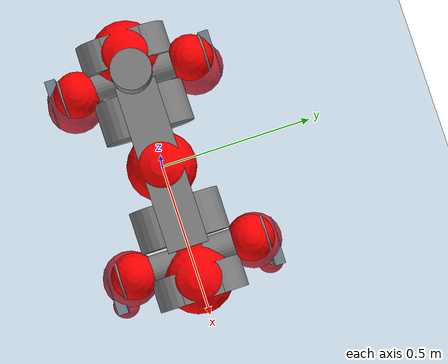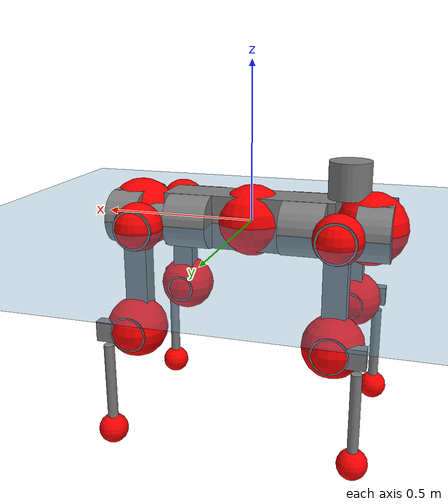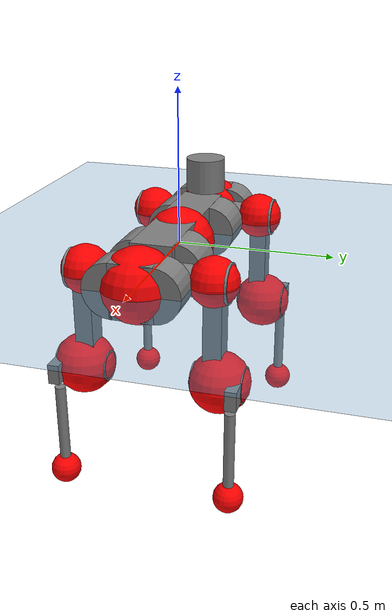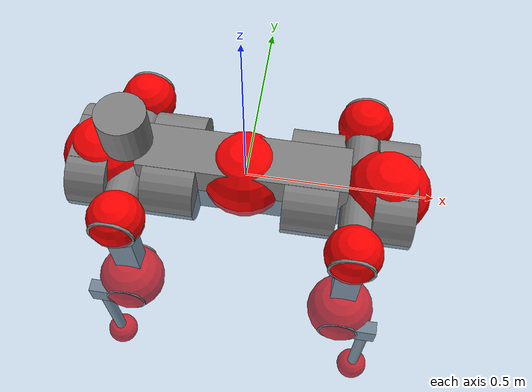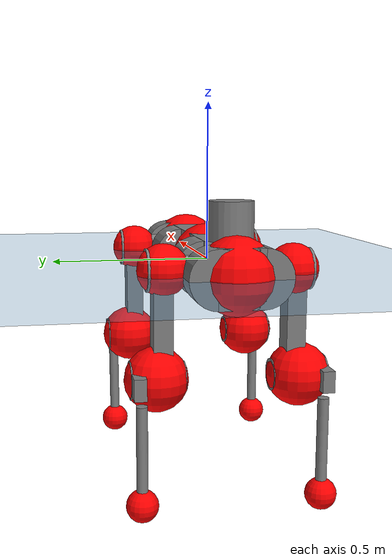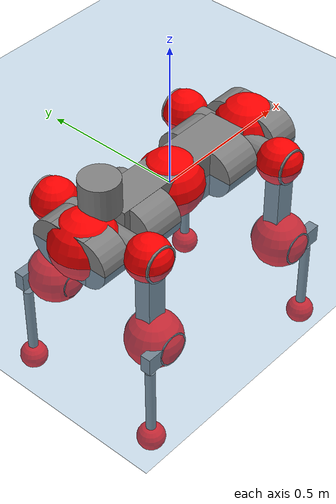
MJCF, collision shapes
<mujoco model="anymal_c">
  <compiler angle="radian" assetdir="assets" balanceinertia="true" inertiafromgeom="false"/>

  <option timestep="0.005" density="1.2" viscosity="2e-05"/>

  <size nkey="1"/>

  <visual>
    <quality shadowsize="8192"/>
    <map shadowclip="0.5"/>
  </visual>

  <default>
    <default class="/">
      <material specular="0" shininess="0.25"/>
      <geom contype="0" conaffinity="0" group="1" solref="-1000 -80"/>
      <site size="0.01 0.005 0.005" group="5"/>
      <general forcelimited="true" forcerange="-80 80" biastype="affine" gainprm="80" biasprm="0 -80 -2"/>
      <default class="anymal_c">
        <joint armature="0.01" damping="0.01" frictionloss="0.1"/>
        <default class="visual">
          <geom type="mesh" group="2"/>
          <default class="visual_zflip"/>
        </default>
        <default class="collision">
          <geom type="cylinder" group="3"/>
          <default class="foot">
            <geom size="0.03 0 0" type="sphere" condim="6" priority="1" friction="0.8 0.02 0.01" solimp="0.015 1 0.03"/>
          </default>
        </default>
      </default>
      <default class="reward_collision_sphere">
        <geom group="5" rgba="1 0 0 1"/>
      </default>
    </default>
  </default>

  <asset>
    <texture type="skybox" colorspace="auto" name="//unnamed_texture_0" builtin="gradient" rgb1="0.95 0.95 0.95" rgb2="0.95 0.95 0.95" width="100" height="600"/>
    <texture type="2d" colorspace="auto" name="texplane" builtin="checker" rgb1="0.345 0.575 0.748" rgb2="0.345 0.575 0.748" markrgb="1 1 1" width="512" height="512"/>
    <texture type="2d" colorspace="linear" name="base" file="base.png"/>
    <texture type="2d" colorspace="linear" name="top_shell" file="top_shell.png"/>
    <texture type="2d" colorspace="linear" name="bottom_shell" file="bottom_shell.png"/>
    <texture type="2d" colorspace="linear" name="remote" file="remote.png"/>
    <texture type="2d" colorspace="linear" name="hatch" file="hatch.png"/>
    <texture type="2d" colorspace="linear" name="handle" file="handle.png"/>
    <texture type="2d" colorspace="linear" name="face" file="face.png"/>
    <texture type="2d" colorspace="linear" name="battery" file="battery.png"/>
    <texture type="2d" colorspace="linear" name="lidar_cage" file="lidar_cage.png"/>
    <texture type="2d" colorspace="linear" name="depth_camera" file="depth_camera.png"/>
    <texture type="2d" colorspace="linear" name="wide_angle_camera" file="wide_angle_camera.png"/>
    <texture type="2d" colorspace="linear" name="lidar" file="lidar.png"/>
    <texture type="2d" colorspace="linear" name="drive" file="drive.png"/>
    <texture type="2d" colorspace="linear" name="hip_l" file="hip_l.png"/>
    <texture type="2d" colorspace="linear" name="shank_l" file="shank_l.png"/>
    <texture type="2d" colorspace="linear" name="foot" file="foot.png"/>
    <texture type="2d" colorspace="linear" name="thigh" file="thigh.png"/>
    <texture type="2d" colorspace="linear" name="shank_r" file="shank_r.png"/>
    <texture type="2d" colorspace="linear" name="hip_r" file="hip_r.png"/>
    <material name="MatPlane" class="/" texture="texplane" texuniform="true" texrepeat="2 2" specular="0.9" shininess="0.5"/>
    <material name="black_plastic" class="/" rgba="0.007 0.007 0.007 1"/>
    <material name="green" class="/" rgba="0.052 0.178 0.033 1"/>
    <material name="red" class="/" rgba="0.178 0.006 0.005 1"/>
    <material name="yellow" class="/" rgba="0.178 0.119 0.006 1"/>
    <material name="lwl" class="/" rgba="0.8 0.8 0.8 1"/>
    <material name="base" class="/" texture="base"/>
    <material name="top_shell" class="/" texture="top_shell"/>
    <material name="bottom_shell" class="/" texture="bottom_shell"/>
    <material name="hip_l" class="/" texture="hip_l"/>
    <material name="thigh" class="/" texture="thigh"/>
    <material name="shank_l" class="/" texture="shank_l"/>
    <material name="foot" class="/" texture="foot"/>
    <material name="hip_r" class="/" texture="hip_r"/>
    <material name="shank" class="/" texture="shank_r"/>
    <material name="hatch" class="/" texture="hatch"/>
    <material name="remote" class="/" texture="remote"/>
    <material name="handle" class="/" texture="handle"/>
    <material name="face" class="/" texture="face"/>
    <material name="depth_camera" class="/" texture="depth_camera"/>
    <material name="wide_angle_camera" class="/" texture="wide_angle_camera"/>
    <material name="battery" class="/" texture="battery"/>
    <material name="lidar_cage" class="/" texture="lidar_cage"/>
    <material name="lidar" class="/" texture="lidar"/>
    <material name="drive" class="/" texture="drive"/>
    <mesh name="base_0" class="/" file="base_0.obj"/>
    <mesh name="base_1" class="/" file="base_1.obj"/>
    <mesh name="base_2" class="/" file="base_2.obj"/>
    <mesh name="base_3" class="/" file="base_3.obj"/>
    <mesh name="base_4" class="/" file="base_4.obj"/>
    <mesh name="base_5" class="/" file="base_5.obj"/>
    <mesh name="top_shell" class="/" file="top_shell.obj"/>
    <mesh name="bottom_shell" class="/" file="bottom_shell.obj"/>
    <mesh name="remote" class="/" file="remote.obj"/>
    <mesh name="handle" class="/" file="handle.obj"/>
    <mesh name="face" class="/" file="face.obj"/>
    <mesh name="wide_angle_camera" class="/" file="wide_angle_camera.obj"/>
    <mesh name="depth_camera" class="/" file="depth_camera.obj"/>
    <mesh name="battery" class="/" file="battery.obj"/>
    <mesh name="lidar_cage" class="/" file="lidar_cage.obj"/>
    <mesh name="lidar" class="/" file="lidar.obj"/>
    <mesh name="drive" class="/" file="drive.obj"/>
    <mesh name="hip_l" class="/" file="hip_l.obj"/>
    <mesh name="thigh" class="/" file="thigh.obj"/>
    <mesh name="shank_l" class="/" file="shank_l.obj"/>
    <mesh name="foot" class="/" file="foot.obj"/>
    <mesh name="hip_r" class="/" file="hip_r.obj"/>
    <mesh name="hatch" class="/" file="hatch.obj"/>
    <mesh name="shank_r" class="/" file="shank_r.obj"/>
  </asset>

  <worldbody>
    <geom name="floor" class="/" size="100 100 0.125" type="plane" group="0" material="MatPlane"/>
    <light name="toplight_shadow" class="/" pos="0 0 5" dir="0.0990148 0.0990148 -0.990148" type="directional" ambient="0.04 0.04 0.04" diffuse="0.55 0.55 0.55" specular="0.12 0.12 0.12"/>
    <light name="toplight_fill" class="/" pos="0 0 5" dir="0.0990148 0.0990148 -0.990148" type="directional" castshadow="false" ambient="0.04 0.04 0.04" diffuse="0.3 0.3 0.3" specular="0.08 0.08 0.08"/>
    <body name="trunk" childclass="anymal_c" pos="-0.00205356 -0.000751295 0.00139227" quat="1 -0.000256916 -3.53161e-05 7.07984e-05">
      <inertial pos="0.00919564 0.00416509 0.0551154" quat="0.501047 0.497014 0.493431 0.508384" mass="15.6309" diaginertia="0.278591 0.37365 0.388379"/>
      <joint name="//unnamed_joint_0" type="free" armature="0" damping="0" frictionloss="0"/>
      <geom name="//unnamed_geom_1" class="visual" material="green" mesh="base_0"/>
      <geom name="//unnamed_geom_2" class="visual" material="yellow" mesh="base_1"/>
      <geom name="//unnamed_geom_3" class="visual" material="red" mesh="base_2"/>
      <geom name="//unnamed_geom_4" class="visual" material="black_plastic" mesh="base_3"/>
      <geom name="//unnamed_geom_5" class="visual" material="lwl" mesh="base_4"/>
      <geom name="//unnamed_geom_6" class="visual" material="base" mesh="base_5"/>
      <geom name="trunk_1" class="collision" size="0.276845 0.0668247 0.0859175" type="box"/>
      <geom name="trunk_2" class="collision" size="0.0859175 0.0692113" pos="0.184224 0.0631393 0" quat="0.707107 0 0.707107 0"/>
      <geom name="trunk_3" class="collision" size="0.0859175 0.0692113" pos="-0.184224 0.0631393 0" quat="0.707107 0 0.707107 0"/>
      <geom name="trunk_4" class="collision" size="0.0859175 0.0692113" pos="0.184224 -0.0631393 0" quat="0.707107 0 0.707107 0"/>
      <geom name="trunk_5" class="collision" size="0.0859175 0.0692113" pos="-0.184224 -0.0631393 0" quat="0.707107 0 0.707107 0"/>
      <geom name="//unnamed_geom_12" class="visual" material="top_shell" mesh="top_shell"/>
      <geom name="//unnamed_geom_13" class="visual" material="bottom_shell" mesh="bottom_shell"/>
      <geom name="//unnamed_geom_14" class="visual" material="remote" mesh="remote"/>
      <geom name="//unnamed_geom_15" class="visual" material="handle" mesh="handle"/>
      <geom name="//unnamed_geom_16" class="visual" pos="0.351085 0 0" quat="1 0 0 0" material="face" mesh="face"/>
      <geom name="trunk_6" class="collision" size="0.0525051 0.0668247 0.0859175" pos="0.397671 0 0" type="box"/>
      <geom name="//unnamed_geom_18" class="collision" size="0.0859175 0.0525051" pos="0.397671 0.0631393 0" quat="0.707107 0 0.707107 0"/>
      <geom name="//unnamed_geom_19" class="collision" size="0.0859175 0.0525051" pos="0.397671 -0.0631393 0" quat="0.707107 0 0.707107 0"/>
      <geom name="//unnamed_geom_20" class="visual" pos="0.391033 0 -0.0345918" quat="0.965926 0 0.258819 0" material="depth_camera" mesh="depth_camera"/>
      <geom name="//unnamed_geom_21" class="visual" pos="0.434516 0 0.0166903" material="wide_angle_camera" mesh="wide_angle_camera"/>
      <geom name="//unnamed_geom_22" class="visual_zflip" pos="-0.351085 0 0" quat="0 0 0 1" material="face" mesh="face"/>
      <geom name="trunk_7" class="collision" size="0.0525051 0.0668247 0.0859175" pos="-0.397671 0 0" quat="0 0 0 1" type="box"/>
      <geom name="//unnamed_geom_24" class="collision" size="0.0859175 0.0525051" pos="-0.397671 -0.0631393 0" quat="0 -0.707107 0 0.707107"/>
      <geom name="//unnamed_geom_25" class="collision" size="0.0859175 0.0525051" pos="-0.397671 0.0631393 0" quat="0 -0.707107 0 0.707107"/>
      <geom name="//unnamed_geom_26" class="visual" pos="-0.391033 0 -0.0345918" quat="0 -0.258819 0 0.965926" material="depth_camera" mesh="depth_camera"/>
      <geom name="//unnamed_geom_27" class="visual_zflip" pos="-0.434516 0 0.0166903" quat="0 0 0 1" material="wide_angle_camera" mesh="wide_angle_camera"/>
      <geom name="//unnamed_geom_28" class="visual" material="battery" mesh="battery"/>
      <geom name="//unnamed_geom_29" class="visual" pos="0 0.0696987 0.0303523" quat="0.683013 -0.183013 0.183013 0.683013" material="depth_camera" mesh="depth_camera"/>
      <geom name="//unnamed_geom_30" class="visual" pos="0 -0.0696987 0.0303523" quat="0.683013 0.183013 0.183013 -0.683013" material="depth_camera" mesh="depth_camera"/>
      <geom name="//unnamed_geom_31" class="visual" pos="-0.308311 0 0.0819466" quat="1 0 0 0" material="lidar_cage" mesh="lidar_cage"/>
      <geom name="trunk_8" class="collision" size="0.0668247 0.0572783" pos="-0.308311 0 0.148842"/>
      <geom name="//unnamed_geom_33" class="visual" pos="-0.308311 2.16004e-05 0.158541" quat="0.707107 0 0 -0.707107" material="lidar" mesh="lidar"/>
      <geom name="//unnamed_geom_34" class="visual" pos="0.254018 0.0938825 -3.67306e-09" quat="0.258819 0.965926 0 0" material="drive" mesh="drive"/>
      <geom name="//unnamed_geom_35" class="visual" pos="0.254018 -0.0938825 3.67306e-09" quat="0.258819 -0.965926 0 0" material="drive" mesh="drive"/>
      <geom name="//unnamed_geom_36" class="visual" pos="-0.254018 0.0938825 3.67306e-09" quat="0 0 0.965926 -0.258819" material="drive" mesh="drive"/>
      <geom name="//unnamed_geom_37" class="visual" pos="-0.254018 -0.0938825 -3.67306e-09" quat="0 0 -0.965926 -0.258819" material="drive" mesh="drive"/>
      <geom name="//unnamed_geom_38" class="visual" pos="0.098253 0 0.0813891" quat="1 0 0 0" material="hatch" mesh="hatch"/>
      <geom name="//unnamed_geom_39" class="reward_collision_sphere" size="0.114557"/>
      <geom name="//unnamed_geom_40" class="reward_collision_sphere" size="0.114557" pos="0.381154 0 0"/>
      <geom name="//unnamed_geom_41" class="reward_collision_sphere" size="0.114557" pos="-0.381154 0 0"/>
      <site name="imu" pos="0.184583 0.00584126 0.0774878" size="0.00954639"/>
      <camera name="track" pos="0 -1.80398 0" quat="0.707107 0.707107 0 0" mode="trackcom"/>
      <camera name="ego_camera" pos="0.381154 0 -0.0445968" quat="-0.5 -0.5 0.5 0.5"/>
      <body name="LF_HIP" pos="0.256827 0.0969341 0.000271716" quat="0.25996 0.965619 -0.000109398 0.000111279">
        <inertial pos="0.0479657 -0.011097 -0.0110165" quat="-0.12797 0.710227 -0.13668 0.678616" mass="2.63098" diaginertia="0.00278096 0.00332923 0.00612239"/>
        <joint name="LF_HAA" pos="0 0 0" axis="0.999929 -0.00869694 -0.00813156" stiffness="0.00687812" range="-0.722406 0.505429" armature="0.0101105" damping="0.00269132" frictionloss="0.103167"/>
        <geom name="//unnamed_geom_42" class="visual" pos="0 -0.00021607 3.54893e-05" quat="0.258819 -0.965926 0 0" material="hip_l" mesh="hip_l"/>
        <geom name="//unnamed_geom_43" class="visual" pos="0.0507358 -0.0622768 -0.0375305" quat="0.183013 -0.683013 0.683013 0.183013" material="drive" mesh="drive"/>
        <geom name="//unnamed_geom_44" class="collision" size="0.047732 0.0668247" pos="0.0507358 -0.0107876 -0.00769852" quat="-0.353553 -0.612372 0.612372 -0.353553"/>
        <body name="LF_THIGH" pos="0.0513163 -0.0712383 -0.0467992" quat="0.180932 -0.683952 0.682638 0.182971">
          <inertial pos="0.0277418 -0.000366051 -0.274286" quat="0.991584 0.000616545 -0.0915702 0.0915215" mass="2.67082" diaginertia="0.0129181 0.0188089 0.00718588"/>
          <joint name="LF_HFE" pos="0 0 0" axis="0.99997 -0.00311536 -0.00703071" stiffness="0.00500903" range="-3.22535 3.10933" armature="0.00861978" damping="0" frictionloss="0.0982388"/>
          <geom name="//unnamed_geom_45" class="visual" pos="-0.0010939 -1.72372e-06 0" quat="0.707107 0 0 -0.707107" material="thigh" mesh="thigh"/>
          <geom name="//unnamed_geom_46" class="collision" size="0.0620515 0.0381856" pos="0.0338804 0 0" quat="0.5 0.5 -0.5 -0.5"/>
          <geom name="//unnamed_geom_47" class="collision" size="0.035799 0.0286392 0.134904" pos="0.0254103 0 -0.157554" quat="0.707107 0 0 -0.707107" type="box"/>
          <geom name="//unnamed_geom_48" class="visual" pos="0.084955 0 -0.317752" quat="1 0 0 0" material="drive" mesh="drive"/>
          <geom name="//unnamed_geom_49" class="collision" size="0.047732 0.0668247" pos="0.0256644 0 -0.317752" quat="0.707107 0 0.707107 0"/>
          <geom name="//unnamed_geom_50" class="reward_collision_sphere" size="0.0763711" pos="0.0211752 0 0"/>
          <body name="LF_SHANK" pos="0.085715 -0.00448212 -0.320233" quat="0.999999 0.000344199 0.00105576 0.000312659">
            <inertial pos="0.00513308 -0.0528576 -0.0902025" quat="0.993022 -0.115171 0.000157318 -0.0253492" mass="0.493437" diaginertia="0.00449401 0.00549029 0.00192482"/>
            <joint name="LF_KFE" pos="0 0 0" axis="0.99992 0.00274051 0.0123813" stiffness="0.0198034" range="-3.16918 3.13613" armature="0.0102079" damping="0.0202894" frictionloss="0.095735"/>
            <geom name="//unnamed_geom_51" class="visual" pos="-0.000356696 -0.00190192 0" quat="0.707107 0 0 -0.707107" material="shank_l" mesh="shank_l"/>
            <geom name="LF_kfe_act" class="collision" size="0.0572783 0.0190928" pos="0.0169402 0 0" quat="0.5 0.5 -0.5 -0.5"/>
            <geom name="//unnamed_geom_53" class="collision" size="0.0548908 0.0322191 0.0181381" pos="0.0169402 -0.0518635 0" quat="0.5 0.5 -0.5 -0.5" type="box"/>
            <geom name="//unnamed_geom_54" class="visual" pos="0.0110536 -0.0799429 -0.376809" quat="0.382683 0 0 -0.92388" material="foot" mesh="foot"/>
            <geom name="LF_calf" class="collision" size="0.0167062 0.134845" pos="0.0110535 -0.07933 -0.188405" quat="0.707107 0 0 -0.707107"/>
            <geom name="LF_foot" class="foot" size="0.0306569" pos="0.0110535 -0.07933 -0.351724" quat="0.707107 0 0 -0.707107"/>
            <geom name="//unnamed_geom_57" class="reward_collision_sphere" size="0.0954639" pos="-0.0423504 0 0"/>
            <geom name="//unnamed_geom_58" class="reward_collision_sphere" size="0.047732" pos="0.0110535 -0.07933 -0.351724"/>
            <site name="LF_foot" class="foot" pos="0.0110535 -0.07933 -0.351724" quat="0.707107 0 0 -0.707107" size="0.00954639"/>
          </body>
        </body>
      </body>
      <body name="RF_HIP" pos="0.259588 -0.0938569 -0.00247561" quat="0.258415 -0.966034 -0.000172766 -5.47972e-05">
        <inertial pos="0.0492926 0.0211373 -0.0077665" quat="0.136819 0.668782 0.101503 0.723677" mass="2.43338" diaginertia="0.00273157 0.00283195 0.00602374"/>
        <joint name="RF_HAA" pos="0 0 0" axis="0.999869 -0.0112585 0.0116631" stiffness="0.00234862" range="-0.447275 0.737186" armature="0.00895422" damping="0.0205838" frictionloss="0.10125"/>
        <geom name="//unnamed_geom_59" class="visual" pos="0 0.000216068 3.54892e-05" quat="0.258819 0.965926 0 0" material="hip_r" mesh="hip_r"/>
        <geom name="//unnamed_geom_60" class="visual" pos="0.0507358 0.0622768 -0.0375305" quat="0.183013 0.683013 0.683013 -0.183013" material="drive" mesh="drive"/>
        <geom name="//unnamed_geom_61" class="collision" size="0.047732 0.0668247" pos="0.0507358 0.0107876 -0.00769852" quat="-0.353553 0.612372 0.612372 0.353553"/>
        <body name="RF_THIGH" pos="0.0505167 0.0657036 -0.0429141" quat="0.182175 0.68255 0.68404 -0.181732">
          <inertial pos="0.0207903 -0.0017861 -0.273336" quat="0.992523 -0.00868364 -0.0817614 0.0902131" mass="2.49667" diaginertia="0.0129985 0.0181049 0.00653462"/>
          <joint name="RF_HFE" pos="0 0 0" axis="0.999997 0.00117935 -0.00197043" stiffness="0.0102627" range="-3.11395 3.09589" armature="0.01015" damping="0.0075766" frictionloss="0.0992409"/>
          <geom name="//unnamed_geom_62" class="visual" pos="-0.0010939 -1.72372e-06 0" quat="0.707107 0 0 -0.707107" material="thigh" mesh="thigh"/>
          <geom name="//unnamed_geom_63" class="collision" size="0.0620515 0.0381856" pos="0.0338804 0 0" quat="0.5 0.5 0.5 0.5"/>
          <geom name="//unnamed_geom_64" class="collision" size="0.035799 0.0286392 0.134904" pos="0.0254103 0 -0.157554" quat="0.707107 0 0 0.707107" type="box"/>
          <geom name="//unnamed_geom_65" class="visual" pos="0.084955 0 -0.317752" quat="1 0 0 0" material="drive" mesh="drive"/>
          <geom name="//unnamed_geom_66" class="collision" size="0.047732 0.0668247" pos="0.0256644 0 -0.317752" quat="0.707107 0 0.707107 0"/>
          <geom name="//unnamed_geom_67" class="reward_collision_sphere" size="0.0763711" pos="0.0211752 0 0"/>
          <body name="RF_SHANK" pos="0.085659 -0.00039147 -0.316873" quat="1 0.000135639 0.000272214 1.56938e-05">
            <inertial pos="0.00742833 0.0549781 -0.0894557" quat="0.990715 0.135811 0.00533437 0.00311093" mass="0.488314" diaginertia="0.00431243 0.00528155 0.00184147"/>
            <joint name="RF_KFE" pos="0 0 0" axis="0.999989 -0.00452778 -0.000888336" stiffness="0.0257709" range="-3.03013 3.15738" armature="0.007892" damping="0" frictionloss="0.0978633"/>
            <geom name="//unnamed_geom_68" class="visual" pos="-0.000356694 0.00190192 0" quat="0.707107 0 0 0.707107" material="shank" mesh="shank_r"/>
            <geom name="RF_kfe_act" class="collision" size="0.0572783 0.0190928" pos="0.0169402 0 0" quat="0.5 0.5 0.5 0.5"/>
            <geom name="//unnamed_geom_70" class="collision" size="0.0548908 0.0322191 0.0181381" pos="0.0169402 0.0518635 0" quat="0.5 0.5 0.5 0.5" type="box"/>
            <geom name="//unnamed_geom_71" class="visual" pos="0.0110534 0.0799429 -0.376809" quat="0.382683 0 0 0.92388" material="foot" mesh="foot"/>
            <geom name="RF_calf" class="collision" size="0.0167062 0.134845" pos="0.0110535 0.07933 -0.188405" quat="0.707107 0 0 0.707107"/>
            <geom name="RF_foot" class="foot" size="0.031428" pos="0.0110535 0.07933 -0.351724" quat="0.707107 0 0 0.707107"/>
            <geom name="//unnamed_geom_74" class="reward_collision_sphere" size="0.0954639" pos="-0.0423504 0 0"/>
            <geom name="//unnamed_geom_75" class="reward_collision_sphere" size="0.047732" pos="0.0110535 0.07933 -0.351724"/>
            <site name="RF_foot" class="foot" pos="0.0110535 0.07933 -0.351724" quat="0.707107 0 0 0.707107" size="0.00954639"/>
          </body>
        </body>
      </body>
      <body name="LH_HIP" pos="-0.258356 0.0959602 0.00398275" quat="0.000246955 0.000223664 0.965922 -0.258832">
        <inertial pos="0.0479966 0.0119274 -0.00334676" quat="0.132212 0.675564 0.142934 0.711129" mass="2.24407" diaginertia="0.00215727 0.00265566 0.00529258"/>
        <joint name="LH_HAA" pos="0 0 0" axis="0.999875 0.0098321 0.012418" range="-0.498973 0.748654" armature="0.0083456" damping="0.0301276" frictionloss="0.0944539"/>
        <geom name="//unnamed_geom_76" class="visual" pos="0 0.000216068 3.54892e-05" quat="-0.258819 -0.965926 0 0" material="hip_r" mesh="hip_r"/>
        <geom name="//unnamed_geom_77" class="visual" pos="0.0507358 0.0622768 -0.0375305" quat="0.183013 0.683013 0.683013 -0.183013" material="drive" mesh="drive"/>
        <geom name="//unnamed_geom_78" class="collision" size="0.047732 0.0668247" pos="0.0507358 0.0107876 -0.00769852" quat="-0.353553 0.612372 0.612372 0.353553"/>
        <body name="LH_THIGH" pos="0.0499415 0.0652193 -0.0462484" quat="0.183328 0.683157 0.682867 -0.182702">
          <inertial pos="0.0331695 0.00144679 -0.267985" quat="0.992813 -0.00590211 -0.0800529 0.0887693" mass="2.70759" diaginertia="0.0146256 0.0178428 0.00750022"/>
          <joint name="LH_HFE" pos="0 0 0" axis="0.999977 0.00353619 -0.0057009" range="-3.13977 3.17033" armature="0.0106769" damping="0.0179181" frictionloss="0.0981406"/>
          <geom name="//unnamed_geom_79" class="visual" pos="-0.0010939 -1.72372e-06 0" quat="0.707107 0 0 -0.707107" material="thigh" mesh="thigh"/>
          <geom name="//unnamed_geom_80" class="collision" size="0.0620515 0.0381856" pos="0.0338804 0 0" quat="0.5 0.5 -0.5 -0.5"/>
          <geom name="//unnamed_geom_81" class="collision" size="0.035799 0.0286392 0.134904" pos="0.0254103 0 -0.157554" quat="0.707107 0 0 -0.707107" type="box"/>
          <geom name="//unnamed_geom_82" class="visual" pos="0.084955 0 -0.317752" quat="1 0 0 0" material="drive" mesh="drive"/>
          <geom name="//unnamed_geom_83" class="collision" size="0.047732 0.0668247" pos="0.0256644 0 -0.317752" quat="0.707107 0 0.707107 0"/>
          <geom name="//unnamed_geom_84" class="reward_collision_sphere" size="0.0763711" pos="0.0211752 0 0"/>
          <body name="LH_SHANK" pos="0.0843753 0.000957659 -0.319829" quat="1 8.16151e-05 -3.88553e-06 8.01136e-06">
            <inertial pos="0.0045874 0.0508837 -0.0914596" quat="0.992587 0.117832 0.00259727 0.0296731" mass="0.467879" diaginertia="0.00411648 0.00476085 0.00179192"/>
            <joint name="LH_KFE" pos="0 0 0" axis="0.999907 0.00252391 0.0133835" stiffness="8.65601e-05" range="-3.22055 3.17712" armature="0.00705679" damping="0" frictionloss="0.112326"/>
            <geom name="//unnamed_geom_85" class="visual" pos="-0.000356694 0.00190192 0" quat="-0.707107 0 0 -0.707107" material="shank" mesh="shank_r"/>
            <geom name="LH_kfe_act" class="collision" size="0.0572783 0.0190928" pos="0.0169402 0 0" quat="0.5 0.5 -0.5 -0.5"/>
            <geom name="//unnamed_geom_87" class="collision" size="0.0548908 0.0322191 0.0181381" pos="0.0169402 0.0518635 0" quat="0.5 0.5 -0.5 -0.5" type="box"/>
            <geom name="//unnamed_geom_88" class="visual" pos="0.0110534 0.0799429 -0.376809" quat="-0.382683 0 0 -0.92388" material="foot" mesh="foot"/>
            <geom name="LH_calf" class="collision" size="0.0167062 0.134845" pos="0.0110535 0.07933 -0.188405" quat="0.707107 0 0 -0.707107"/>
            <geom name="LH_foot" class="foot" size="0.0304413" pos="0.0110535 0.07933 -0.351724" quat="0.707107 0 0 -0.707107"/>
            <geom name="//unnamed_geom_91" class="reward_collision_sphere" size="0.0954639" pos="-0.0423504 0 0"/>
            <geom name="//unnamed_geom_92" class="reward_collision_sphere" size="0.047732" pos="0.0110535 0.07933 -0.351724"/>
            <site name="LH_foot" class="foot" pos="0.0110535 0.07933 -0.351724" quat="0.707107 0 0 -0.707107" size="0.00954639"/>
          </body>
        </body>
      </body>
      <body name="RH_HIP" pos="-0.261101 -0.0916146 0.000842922" quat="-0.000108821 -0.000815133 -0.966013 -0.258491">
        <inertial pos="0.0488448 -0.0141466 -0.00346192" quat="-0.142797 0.684383 -0.136677 0.701818" mass="2.50733" diaginertia="0.00274486 0.00318562 0.00618661"/>
        <joint name="RH_HAA" pos="0 0 0" axis="0.999689 -0.0229191 0.00979382" range="-0.629188 0.486166" armature="0.00905162" damping="0.0105338" frictionloss="0.0945827"/>
        <geom name="//unnamed_geom_93" class="visual" pos="0 -0.00021607 3.54893e-05" quat="-0.258819 0.965926 0 0" material="hip_l" mesh="hip_l"/>
        <geom name="//unnamed_geom_94" class="visual" pos="0.0507358 -0.0622768 -0.0375305" quat="-0.183013 0.683013 -0.683013 -0.183013" material="drive" mesh="drive"/>
        <geom name="//unnamed_geom_95" class="collision" size="0.047732 0.0668247" pos="0.0507358 -0.0107876 -0.00769852" quat="0.353553 0.612372 -0.612372 0.353553"/>
        <body name="RH_THIGH" pos="0.0446827 -0.0642031 -0.0420896" quat="-0.182159 0.684188 -0.682303 -0.182117">
          <inertial pos="0.0276315 -0.000763892 -0.271686" quat="0.993347 -0.00272764 -0.0780098 0.0846647" mass="2.79904" diaginertia="0.0138309 0.0176861 0.00710878"/>
          <joint name="RH_HFE" pos="0 0 0" axis="0.999926 -0.0103731 0.00630691" range="-3.15776 3.10962" armature="0.00839739" damping="0.00643794" frictionloss="0.0987143"/>
          <geom name="//unnamed_geom_96" class="visual" pos="-0.0010939 -1.72372e-06 0" quat="0.707107 0 0 -0.707107" material="thigh" mesh="thigh"/>
          <geom name="//unnamed_geom_97" class="collision" size="0.0620515 0.0381856" pos="0.0338804 0 0" quat="0.5 0.5 0.5 0.5"/>
          <geom name="//unnamed_geom_98" class="collision" size="0.035799 0.0286392 0.134904" pos="0.0254103 0 -0.157554" quat="0.707107 0 0 0.707107" type="box"/>
          <geom name="//unnamed_geom_99" class="visual" pos="0.084955 0 -0.317752" quat="1 0 0 0" material="drive" mesh="drive"/>
          <geom name="//unnamed_geom_100" class="collision" size="0.047732 0.0668247" pos="0.0256644 0 -0.317752" quat="0.707107 0 0.707107 0"/>
          <geom name="//unnamed_geom_101" class="reward_collision_sphere" size="0.0763711" pos="0.0211752 0 0"/>
          <body name="RH_SHANK" pos="0.0860435 -0.00327336 -0.317842" quat="0.999997 0.00128929 -0.00219401 0.000597465">
            <inertial pos="0.00130759 -0.0557768 -0.0880207" quat="0.992458 -0.121815 -0.0036586 -0.0132044" mass="0.495863" diaginertia="0.00439452 0.00550727 0.00190684"/>
            <joint name="RH_KFE" pos="0 0 0" axis="0.999831 -0.00427441 0.0178862" stiffness="0.00785677" range="-3.14176 3.04416" armature="0.00940365" damping="0" frictionloss="0.098142"/>
            <geom name="//unnamed_geom_102" class="visual" pos="-0.000356696 -0.00190192 0" quat="0.707107 0 0 -0.707107" material="shank_l" mesh="shank_l"/>
            <geom name="RH_kfe_act" class="collision" size="0.0572783 0.0190928" pos="0.0169402 0 0" quat="0.5 0.5 0.5 0.5"/>
            <geom name="//unnamed_geom_104" class="collision" size="0.0548908 0.0322191 0.0181381" pos="0.0169402 -0.0518635 0" quat="0.5 0.5 0.5 0.5" type="box"/>
            <geom name="//unnamed_geom_105" class="visual" pos="0.0110536 -0.0799429 -0.376809" quat="0.382683 0 0 -0.92388" material="foot" mesh="foot"/>
            <geom name="RH_calf" class="collision" size="0.0167062 0.134845" pos="0.0110535 -0.07933 -0.188405" quat="0.707107 0 0 0.707107"/>
            <geom name="RH_foot" class="foot" size="0.0300557" pos="0.0110535 -0.07933 -0.351724" quat="0.707107 0 0 0.707107"/>
            <geom name="//unnamed_geom_108" class="reward_collision_sphere" size="0.0954639" pos="-0.0423504 0 0"/>
            <geom name="//unnamed_geom_109" class="reward_collision_sphere" size="0.047732" pos="0.0110535 -0.07933 -0.351724"/>
            <site name="RH_foot" class="foot" pos="0.0110535 -0.07933 -0.351724" quat="0.707107 0 0 0.707107" size="0.00954639"/>
          </body>
        </body>
      </body>
    </body>
  </worldbody>

  <contact>
    <pair class="/" geom1="floor" geom2="LF_foot" name="//unnamed_contact_0"/>
    <pair class="/" geom1="floor" geom2="RF_foot" name="//unnamed_contact_1"/>
    <pair class="/" geom1="floor" geom2="LH_foot" name="//unnamed_contact_2"/>
    <pair class="/" geom1="floor" geom2="RH_foot" name="//unnamed_contact_3"/>
  </contact>

  <actuator>
    <general name="LF_HAA" class="/" joint="LF_HAA" forcerange="-84.6704 84.6704" gainprm="77.2612" biasprm="0 -77.2612 -1.89295"/>
    <general name="LF_HFE" class="/" joint="LF_HFE" forcerange="-92.8135 92.8135" gainprm="77.2612" biasprm="0 -77.2612 -1.89295"/>
    <general name="LF_KFE" class="/" joint="LF_KFE" forcerange="-72.3197 72.3197" gainprm="77.2612" biasprm="0 -77.2612 -1.89295"/>
    <general name="RF_HAA" class="/" joint="RF_HAA" forcerange="-81.1486 81.1486" gainprm="77.2612" biasprm="0 -77.2612 -1.89295"/>
    <general name="RF_HFE" class="/" joint="RF_HFE" forcerange="-70.7655 70.7655" gainprm="77.2612" biasprm="0 -77.2612 -1.89295"/>
    <general name="RF_KFE" class="/" joint="RF_KFE" forcerange="-70.0545 70.0545" gainprm="77.2612" biasprm="0 -77.2612 -1.89295"/>
    <general name="LH_HAA" class="/" joint="LH_HAA" forcerange="-79.1321 79.1321" gainprm="77.2612" biasprm="0 -77.2612 -1.89295"/>
    <general name="LH_HFE" class="/" joint="LH_HFE" forcerange="-83.2873 83.2873" gainprm="77.2612" biasprm="0 -77.2612 -1.89295"/>
    <general name="LH_KFE" class="/" joint="LH_KFE" forcerange="-80.6253 80.6253" gainprm="77.2612" biasprm="0 -77.2612 -1.89295"/>
    <general name="RH_HAA" class="/" joint="RH_HAA" forcerange="-71.7078 71.7078" gainprm="77.2612" biasprm="0 -77.2612 -1.89295"/>
    <general name="RH_HFE" class="/" joint="RH_HFE" forcerange="-64.8862 64.8862" gainprm="77.2612" biasprm="0 -77.2612 -1.89295"/>
    <general name="RH_KFE" class="/" joint="RH_KFE" forcerange="-83.2273 83.2273" gainprm="77.2612" biasprm="0 -77.2612 -1.89295"/>
  </actuator>

  <sensor>
    <gyro site="imu" name="imu_angular_velocity"/>
    <velocimeter site="imu" name="imu_linear_velocity"/>
    <framelinvel objtype="site" objname="LF_foot" name="LF_foot_global_linear_velocity"/>
    <framelinvel objtype="site" objname="RF_foot" name="RF_foot_global_linear_velocity"/>
    <framelinvel objtype="site" objname="LH_foot" name="LH_foot_global_linear_velocity"/>
    <framelinvel objtype="site" objname="RH_foot" name="RH_foot_global_linear_velocity"/>
  </sensor>

  <keyframe>
    <key name="home" qpos="0 0 0.55 1 0 0 0 0 0.4 -0.8 0 -0.4 0.8 0 -0.4 0.8 0 0.4 -0.8"/>
  </keyframe>
</mujoco>
